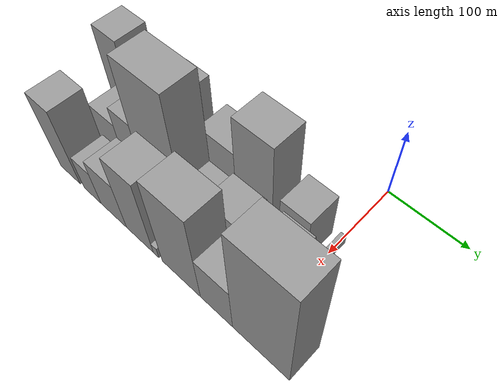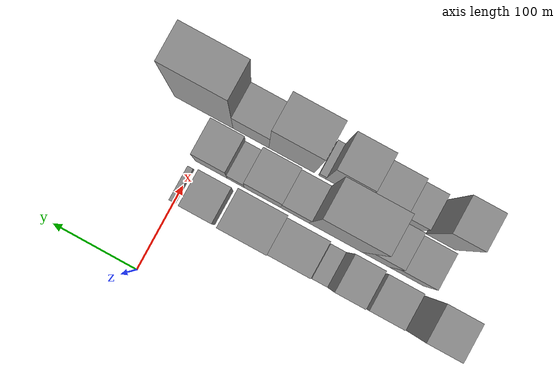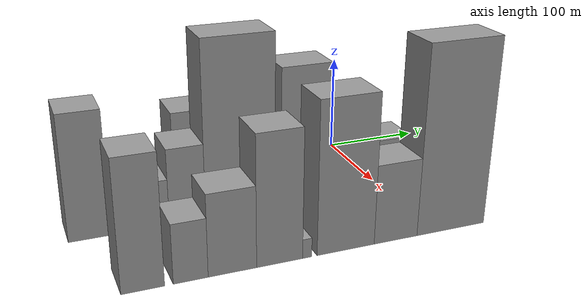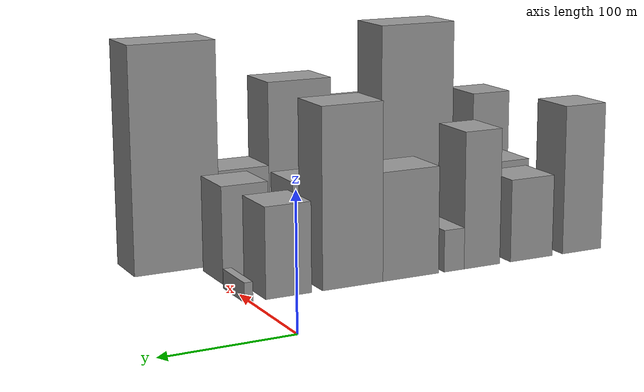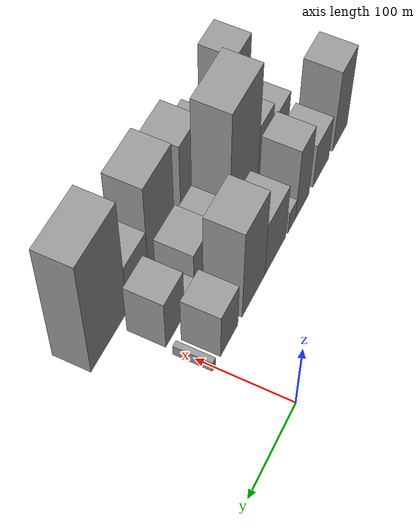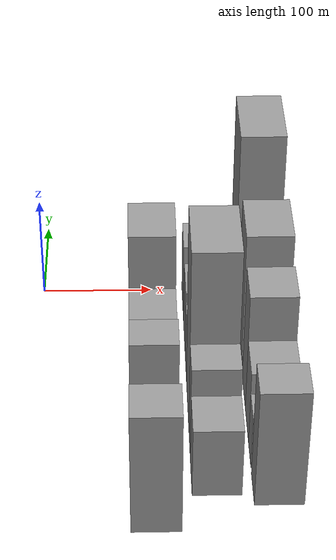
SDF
<sdf version="1.6">
 <world name="default">
  <model name="building_10">
   <static>1</static>
   <pose>100.0000 -290.5077 0 0.000000 0.000000 0.000000</pose>
   <link name="link">
    <pose>0 0 60.00 0 0 0</pose>
    <collision name="collision"><geometry><box><size>40.0000 37.6535 120.0000</size></box></geometry></collision>
    <visual name="visual">
     <cast_shadows>0</cast_shadows>
     <geometry><box><size>40.0000 37.6535 120.0000</size></box></geometry>
     <material>
      <script>
       <uri>model://grey_wall/materials/scripts</uri>
       <uri>model://grey_wall/materials/textures</uri>
       <name>vrc/grey_wall</name>
      </script>
     </material>
    </visual>
   </link>
  </model>
  <model name="building_11">
   <static>1</static>
   <pose>100.0000 -241.9130 0 0.000000 0.000000 0.000000</pose>
   <link name="link">
    <pose>0 0 33.00 0 0 0</pose>
    <collision name="collision"><geometry><box><size>40.0000 39.5359 66.0000</size></box></geometry></collision>
    <visual name="visual">
     <cast_shadows>0</cast_shadows>
     <geometry><box><size>40.0000 39.5359 66.0000</size></box></geometry>
     <material>
      <script>
       <uri>model://grey_wall/materials/scripts</uri>
       <uri>model://grey_wall/materials/textures</uri>
       <name>vrc/grey_wall</name>
      </script>
     </material>
    </visual>
   </link>
  </model>
  <model name="building_12">
   <static>1</static>
   <pose>100.0000 -195.8661 0 0.000000 0.000000 0.000000</pose>
   <link name="link">
    <pose>0 0 54.00 0 0 0</pose>
    <collision name="collision"><geometry><box><size>40.0000 32.5578 108.0000</size></box></geometry></collision>
    <visual name="visual">
     <cast_shadows>0</cast_shadows>
     <geometry><box><size>40.0000 32.5578 108.0000</size></box></geometry>
     <material>
      <script>
       <uri>model://grey_wall/materials/scripts</uri>
       <uri>model://grey_wall/materials/textures</uri>
       <name>vrc/grey_wall</name>
      </script>
     </material>
    </visual>
   </link>
  </model>
  <model name="building_13">
   <static>1</static>
   <pose>100.0000 -170.6438 0 0.000000 0.000000 0.000000</pose>
   <link name="link">
    <pose>0 0 16.50 0 0 0</pose>
    <collision name="collision"><geometry><box><size>40.0000 17.8870 33.0000</size></box></geometry></collision>
    <visual name="visual">
     <cast_shadows>0</cast_shadows>
     <geometry><box><size>40.0000 17.8870 33.0000</size></box></geometry>
     <material>
      <script>
       <uri>model://grey_wall/materials/scripts</uri>
       <uri>model://grey_wall/materials/textures</uri>
       <name>vrc/grey_wall</name>
      </script>
     </material>
    </visual>
   </link>
  </model>
  <model name="building_14">
   <static>1</static>
   <pose>100.0000 -132.5002 0 0.000000 0.000000 0.000000</pose>
   <link name="link">
    <pose>0 0 42.00 0 0 0</pose>
    <collision name="collision"><geometry><box><size>40.0000 48.4001 84.0000</size></box></geometry></collision>
    <visual name="visual">
     <cast_shadows>0</cast_shadows>
     <geometry><box><size>40.0000 48.4001 84.0000</size></box></geometry>
     <material>
      <script>
       <uri>model://grey_wall/materials/scripts</uri>
       <uri>model://grey_wall/materials/textures</uri>
       <name>vrc/grey_wall</name>
      </script>
     </material>
    </visual>
   </link>
  </model>
  <model name="building_15">
   <static>1</static>
   <pose>100.0000 -83.1058 0 0.000000 0.000000 0.000000</pose>
   <link name="link">
    <pose>0 0 69.00 0 0 0</pose>
    <collision name="collision"><geometry><box><size>40.0000 50.3887 138.0000</size></box></geometry></collision>
    <visual name="visual">
     <cast_shadows>0</cast_shadows>
     <geometry><box><size>40.0000 50.3887 138.0000</size></box></geometry>
     <material>
      <script>
       <uri>model://grey_wall/materials/scripts</uri>
       <uri>model://grey_wall/materials/textures</uri>
       <name>vrc/grey_wall</name>
      </script>
     </material>
    </visual>
   </link>
  </model>
  <model name="building_16">
   <static>1</static>
   <pose>100.0000 -30.5629 0 0.000000 0.000000 0.000000</pose>
   <link name="link">
    <pose>0 0 34.50 0 0 0</pose>
    <collision name="collision"><geometry><box><size>40.0000 36.6970 69.0000</size></box></geometry></collision>
    <visual name="visual">
     <cast_shadows>0</cast_shadows>
     <geometry><box><size>40.0000 36.6970 69.0000</size></box></geometry>
     <material>
      <script>
       <uri>model://grey_wall/materials/scripts</uri>
       <uri>model://grey_wall/materials/textures</uri>
       <name>vrc/grey_wall</name>
      </script>
     </material>
    </visual>
   </link>
  </model>
  <model name="building_17">
   <static>1</static>
   <pose>100.0000 1.1108 0 0.000000 0.000000 0.000000</pose>
   <link name="link">
    <pose>0 0 7.50 0 0 0</pose>
    <collision name="collision"><geometry><box><size>40.0000 6.6503 15.0000</size></box></geometry></collision>
    <visual name="visual">
     <cast_shadows>0</cast_shadows>
     <geometry><box><size>40.0000 6.6503 15.0000</size></box></geometry>
     <material>
      <script>
       <uri>model://grey_wall/materials/scripts</uri>
       <uri>model://grey_wall/materials/textures</uri>
       <name>vrc/grey_wall</name>
      </script>
     </material>
    </visual>
   </link>
  </model>
  <model name="building_39">
   <static>1</static>
   <pose>149.0000 -249.7670 0 0.000000 0.000000 0.000000</pose>
   <link name="link">
    <pose>0 0 34.50 0 0 0</pose>
    <collision name="collision"><geometry><box><size>40.0000 41.3099 69.0000</size></box></geometry></collision>
    <visual name="visual">
     <cast_shadows>0</cast_shadows>
     <geometry><box><size>40.0000 41.3099 69.0000</size></box></geometry>
     <material>
      <script>
       <uri>model://grey_wall/materials/scripts</uri>
       <uri>model://grey_wall/materials/textures</uri>
       <name>vrc/grey_wall</name>
      </script>
     </material>
    </visual>
   </link>
  </model>
  <model name="building_40">
   <static>1</static>
   <pose>149.0000 -213.1885 0 0.000000 0.000000 0.000000</pose>
   <link name="link">
    <pose>0 0 48.00 0 0 0</pose>
    <collision name="collision"><geometry><box><size>40.0000 31.8470 96.0000</size></box></geometry></collision>
    <visual name="visual">
     <cast_shadows>0</cast_shadows>
     <geometry><box><size>40.0000 31.8470 96.0000</size></box></geometry>
     <material>
      <script>
       <uri>model://grey_wall/materials/scripts</uri>
       <uri>model://grey_wall/materials/textures</uri>
       <name>vrc/grey_wall</name>
      </script>
     </material>
    </visual>
   </link>
  </model>
  <model name="building_41">
   <static>1</static>
   <pose>149.0000 -165.3046 0 0.000000 0.000000 0.000000</pose>
   <link name="link">
    <pose>0 0 93.00 0 0 0</pose>
    <collision name="collision"><geometry><box><size>40.0000 63.9208 186.0000</size></box></geometry></collision>
    <visual name="visual">
     <cast_shadows>0</cast_shadows>
     <geometry><box><size>40.0000 63.9208 186.0000</size></box></geometry>
     <material>
      <script>
       <uri>model://grey_wall/materials/scripts</uri>
       <uri>model://grey_wall/materials/textures</uri>
       <name>vrc/grey_wall</name>
      </script>
     </material>
    </visual>
   </link>
  </model>
  <model name="building_42">
   <static>1</static>
   <pose>149.0000 -116.6130 0 0.000000 0.000000 0.000000</pose>
   <link name="link">
    <pose>0 0 30.00 0 0 0</pose>
    <collision name="collision"><geometry><box><size>40.0000 33.4624 60.0000</size></box></geometry></collision>
    <visual name="visual">
     <cast_shadows>0</cast_shadows>
     <geometry><box><size>40.0000 33.4624 60.0000</size></box></geometry>
     <material>
      <script>
       <uri>model://grey_wall/materials/scripts</uri>
       <uri>model://grey_wall/materials/textures</uri>
       <name>vrc/grey_wall</name>
      </script>
     </material>
    </visual>
   </link>
  </model>
  <model name="building_43">
   <static>1</static>
   <pose>149.0000 -78.4307 0 0.000000 0.000000 0.000000</pose>
   <link name="link">
    <pose>0 0 36.00 0 0 0</pose>
    <collision name="collision"><geometry><box><size>40.0000 42.9023 72.0000</size></box></geometry></collision>
    <visual name="visual">
     <cast_shadows>0</cast_shadows>
     <geometry><box><size>40.0000 42.9023 72.0000</size></box></geometry>
     <material>
      <script>
       <uri>model://grey_wall/materials/scripts</uri>
       <uri>model://grey_wall/materials/textures</uri>
       <name>vrc/grey_wall</name>
      </script>
     </material>
    </visual>
   </link>
  </model>
  <model name="building_44">
   <static>1</static>
   <pose>149.0000 -46.8385 0 0.000000 0.000000 0.000000</pose>
   <link name="link">
    <pose>0 0 18.00 0 0 0</pose>
    <collision name="collision"><geometry><box><size>40.0000 20.2821 36.0000</size></box></geometry></collision>
    <visual name="visual">
     <cast_shadows>0</cast_shadows>
     <geometry><box><size>40.0000 20.2821 36.0000</size></box></geometry>
     <material>
      <script>
       <uri>model://grey_wall/materials/scripts</uri>
       <uri>model://grey_wall/materials/textures</uri>
       <name>vrc/grey_wall</name>
      </script>
     </material>
    </visual>
   </link>
  </model>
  <model name="building_45">
   <static>1</static>
   <pose>149.0000 -17.8517 0 0.000000 0.000000 0.000000</pose>
   <link name="link">
    <pose>0 0 37.50 0 0 0</pose>
    <collision name="collision"><geometry><box><size>40.0000 37.6915 75.0000</size></box></geometry></collision>
    <visual name="visual">
     <cast_shadows>0</cast_shadows>
     <geometry><box><size>40.0000 37.6915 75.0000</size></box></geometry>
     <material>
      <script>
       <uri>model://grey_wall/materials/scripts</uri>
       <uri>model://grey_wall/materials/textures</uri>
       <name>vrc/grey_wall</name>
      </script>
     </material>
    </visual>
   </link>
  </model>
  <model name="building_68">
   <static>1</static>
   <pose>198.0000 -264.2384 0 0.000000 0.000000 0.000000</pose>
   <link name="link">
    <pose>0 0 58.50 0 0 0</pose>
    <collision name="collision"><geometry><box><size>40.0000 35.2424 117.0000</size></box></geometry></collision>
    <visual name="visual">
     <cast_shadows>0</cast_shadows>
     <geometry><box><size>40.0000 35.2424 117.0000</size></box></geometry>
     <material>
      <script>
       <uri>model://grey_wall/materials/scripts</uri>
       <uri>model://grey_wall/materials/textures</uri>
       <name>vrc/grey_wall</name>
      </script>
     </material>
    </visual>
   </link>
  </model>
  <model name="building_69">
   <static>1</static>
   <pose>198.0000 -225.0719 0 0.000000 0.000000 0.000000</pose>
   <link name="link">
    <pose>0 0 27.00 0 0 0</pose>
    <collision name="collision"><geometry><box><size>40.0000 29.0906 54.0000</size></box></geometry></collision>
    <visual name="visual">
     <cast_shadows>0</cast_shadows>
     <geometry><box><size>40.0000 29.0906 54.0000</size></box></geometry>
     <material>
      <script>
       <uri>model://grey_wall/materials/scripts</uri>
       <uri>model://grey_wall/materials/textures</uri>
       <name>vrc/grey_wall</name>
      </script>
     </material>
    </visual>
   </link>
  </model>
  <model name="building_70">
   <static>1</static>
   <pose>198.0000 -189.5818 0 0.000000 0.000000 0.000000</pose>
   <link name="link">
    <pose>0 0 37.50 0 0 0</pose>
    <collision name="collision"><geometry><box><size>40.0000 41.8895 75.0000</size></box></geometry></collision>
    <visual name="visual">
     <cast_shadows>0</cast_shadows>
     <geometry><box><size>40.0000 41.8895 75.0000</size></box></geometry>
     <material>
      <script>
       <uri>model://grey_wall/materials/scripts</uri>
       <uri>model://grey_wall/materials/textures</uri>
       <name>vrc/grey_wall</name>
      </script>
     </material>
    </visual>
   </link>
  </model>
  <model name="building_71">
   <static>1</static>
   <pose>198.0000 -147.9587 0 0.000000 0.000000 0.000000</pose>
   <link name="link">
    <pose>0 0 60.00 0 0 0</pose>
    <collision name="collision"><geometry><box><size>40.0000 41.3566 120.0000</size></box></geometry></collision>
    <visual name="visual">
     <cast_shadows>0</cast_shadows>
     <geometry><box><size>40.0000 41.3566 120.0000</size></box></geometry>
     <material>
      <script>
       <uri>model://grey_wall/materials/scripts</uri>
       <uri>model://grey_wall/materials/textures</uri>
       <name>vrc/grey_wall</name>
      </script>
     </material>
    </visual>
   </link>
  </model>
  <model name="building_72">
   <static>1</static>
   <pose>198.0000 -123.0814 0 0.000000 0.000000 0.000000</pose>
   <link name="link">
    <pose>0 0 9.00 0 0 0</pose>
    <collision name="collision"><geometry><box><size>40.0000 8.3980 18.0000</size></box></geometry></collision>
    <visual name="visual">
     <cast_shadows>0</cast_shadows>
     <geometry><box><size>40.0000 8.3980 18.0000</size></box></geometry>
     <material>
      <script>
       <uri>model://grey_wall/materials/scripts</uri>
       <uri>model://grey_wall/materials/textures</uri>
       <name>vrc/grey_wall</name>
      </script>
     </material>
    </visual>
   </link>
  </model>
  <model name="building_73">
   <static>1</static>
   <pose>198.0000 -86.6538 0 0.000000 0.000000 0.000000</pose>
   <link name="link">
    <pose>0 0 70.50 0 0 0</pose>
    <collision name="collision"><geometry><box><size>40.0000 54.4571 141.0000</size></box></geometry></collision>
    <visual name="visual">
     <cast_shadows>0</cast_shadows>
     <geometry><box><size>40.0000 54.4571 141.0000</size></box></geometry>
     <material>
      <script>
       <uri>model://grey_wall/materials/scripts</uri>
       <uri>model://grey_wall/materials/textures</uri>
       <name>vrc/grey_wall</name>
      </script>
     </material>
    </visual>
   </link>
  </model>
  <model name="building_74">
   <static>1</static>
   <pose>198.0000 -38.0550 0 0.000000 0.000000 0.000000</pose>
   <link name="link">
    <pose>0 0 37.50 0 0 0</pose>
    <collision name="collision"><geometry><box><size>40.0000 42.7404 75.0000</size></box></geometry></collision>
    <visual name="visual">
     <cast_shadows>0</cast_shadows>
     <geometry><box><size>40.0000 42.7404 75.0000</size></box></geometry>
     <material>
      <script>
       <uri>model://grey_wall/materials/scripts</uri>
       <uri>model://grey_wall/materials/textures</uri>
       <name>vrc/grey_wall</name>
      </script>
     </material>
    </visual>
   </link>
  </model>
  <model name="building_75">
   <static>1</static>
   <pose>198.0000 18.2504 0 0.000000 0.000000 0.000000</pose>
   <link name="link">
    <pose>0 0 88.50 0 0 0</pose>
    <collision name="collision"><geometry><box><size>40.0000 69.8704 177.0000</size></box></geometry></collision>
    <visual name="visual">
     <cast_shadows>0</cast_shadows>
     <geometry><box><size>40.0000 69.8704 177.0000</size></box></geometry>
     <material>
      <script>
       <uri>model://grey_wall/materials/scripts</uri>
       <uri>model://grey_wall/materials/textures</uri>
       <name>vrc/grey_wall</name>
      </script>
     </material>
    </visual>
   </link>
  </model>
 </world>
</sdf>
